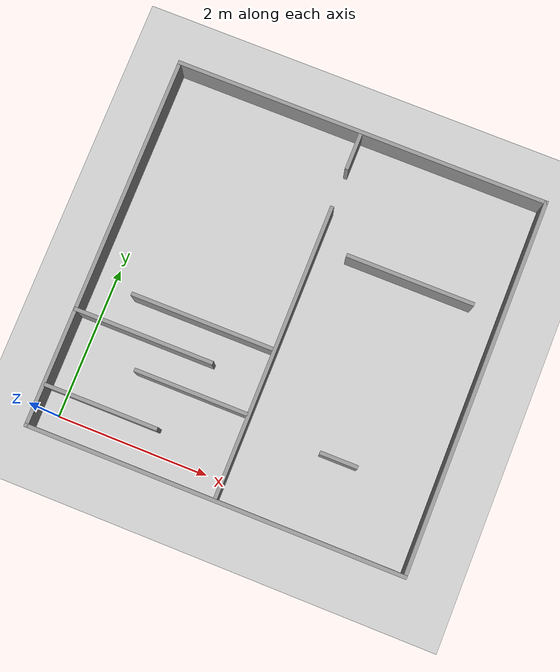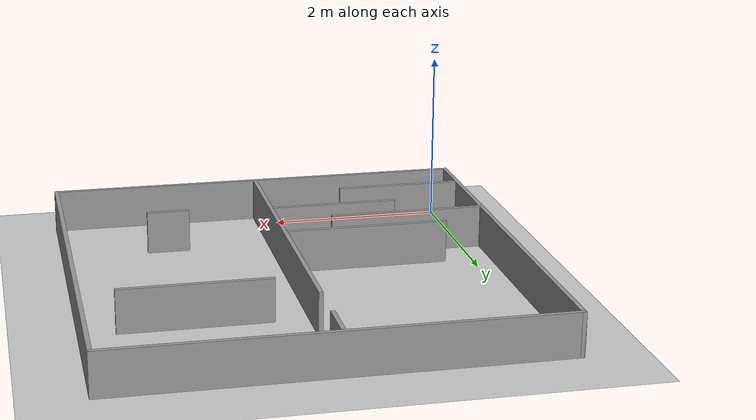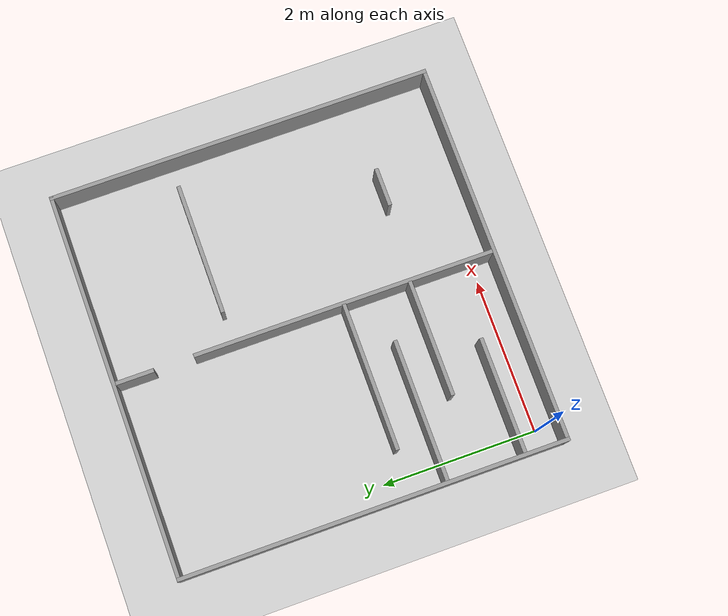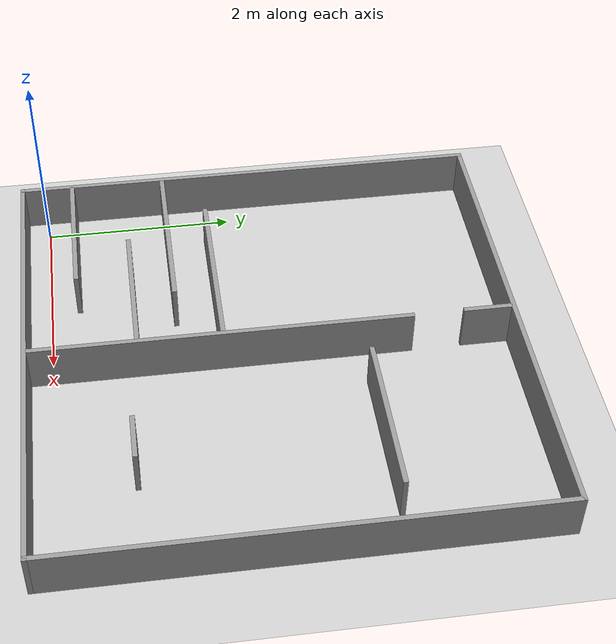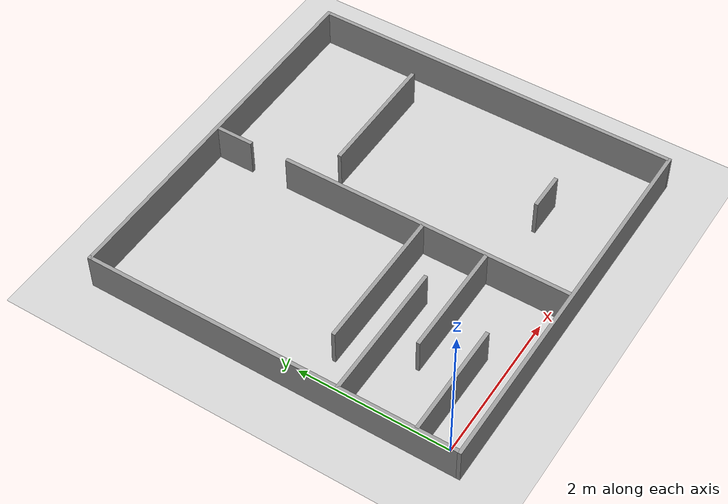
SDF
<sdf version="1.7">
 <world name="default">
  <light name="sun" type="directional">
   <pose>0 0 10 0 -0 0</pose>
   <diffuse>0.8 0.8 0.8 1</diffuse>
   <specular>0.2 0.2 0.2 1</specular>
   <attenuation>
    <range>1000</range>
    <constant>0.9</constant>
    <linear>0.01</linear>
    <quadratic>0.001</quadratic>
   </attenuation>
   <direction>-0.5 0.1 -0.9</direction>
   <spot><inner_angle>0</inner_angle><outer_angle>0</outer_angle><falloff>0</falloff></spot>
  </light>
  <model name="ground_plane">
   <static>1</static>
   <link name="link">
    <collision name="collision">
     <geometry><plane><normal>0 0 1</normal><size>100 100</size></plane></geometry>
     <surface>
      <contact><collide_bitmask>65535</collide_bitmask></contact>
      <friction><ode><mu>100</mu><mu2>50</mu2></ode></friction>
     </surface>
    </collision>
    <visual name="visual">
     <cast_shadows>0</cast_shadows>
     <geometry><plane><normal>0 0 1</normal><size>100 100</size></plane></geometry>
     <material>
      <script><uri>file://media/materials/scripts/gazebo.material</uri><name>Gazebo/Grey</name></script>
     </material>
    </visual>
   </link>
  </model>
  <gravity>0 0 -9.8</gravity>
  <magnetic_field>6e-06 2.3e-05 -4.2e-05</magnetic_field>
  <atmosphere type="adiabatic"/>
  <physics type="ode">
   <max_step_size>0.001</max_step_size>
   <real_time_factor>1</real_time_factor>
   <real_time_update_rate>1000</real_time_update_rate>
  </physics>
  <scene><ambient>0.4 0.4 0.4 1</ambient><background>0.7 0.7 0.7 1</background><shadows>1</shadows></scene>
  <spherical_coordinates>
   <surface_model>EARTH_WGS84</surface_model>
   <latitude_deg>0</latitude_deg>
   <longitude_deg>0</longitude_deg>
   <elevation>0</elevation>
   <heading_deg>0</heading_deg>
  </spherical_coordinates>
  <model name="car">
   <pose>2.23014 2.22643 0 0 -0 0</pose>
   <link name="Wall_0">
    <collision name="Wall_0_Collision">
     <geometry><box><size>5 0.05 0.5</size></box></geometry>
     <pose>0 0 0.25 0 -0 0</pose>
    </collision>
    <visual name="Wall_0_Visual">
     <pose>0 0 0.25 0 -0 0</pose>
     <geometry><box><size>5 0.05 0.5</size></box></geometry>
     <material>
      <script><uri>file://media/materials/scripts/gazebo.material</uri><name>Gazebo/Grey</name></script>
      <ambient>1 1 1 1</ambient>
     </material>
     <meta><layer>0</layer></meta>
    </visual>
    <pose>-2.475 1.3e-05 0 0 -0 -1.57074</pose>
   </link>
   <link name="Wall_11">
    <collision name="Wall_11_Collision">
     <geometry><box><size>3.9 0.05 0.5</size></box></geometry>
     <pose>0 0 0.25 0 -0 0</pose>
    </collision>
    <visual name="Wall_11_Visual">
     <pose>0 0 0.25 0 -0 0</pose>
     <geometry><box><size>3.9 0.05 0.5</size></box></geometry>
     <material>
      <script><uri>file://media/materials/scripts/gazebo.material</uri><name>Gazebo/Grey</name></script>
      <ambient>1 1 1 1</ambient>
     </material>
     <meta><layer>0</layer></meta>
    </visual>
    <pose>0.004563 -0.502438 0 0 -0 -1.5708</pose>
   </link>
   <link name="Wall_13">
    <collision name="Wall_13_Collision">
     <geometry><box><size>1.5 0.05 0.5</size></box></geometry>
     <pose>0 0 0.25 0 -0 0</pose>
    </collision>
    <visual name="Wall_13_Visual">
     <pose>0 0 0.25 0 -0 0</pose>
     <geometry><box><size>1.5 0.05 0.5</size></box></geometry>
     <material>
      <script><uri>file://media/materials/scripts/gazebo.material</uri><name>Gazebo/Grey</name></script>
      <ambient>1 1 1 1</ambient>
     </material>
     <meta><layer>0</layer></meta>
    </visual>
    <pose>-0.760267 -1.35847 0 0 -0 3.14159</pose>
   </link>
   <link name="Wall_15">
    <collision name="Wall_15_Collision">
     <geometry><box><size>1.85 0.05 0.5</size></box></geometry>
     <pose>0 0 0.25 0 -0 0</pose>
    </collision>
    <visual name="Wall_15_Visual">
     <pose>0 0 0.25 0 -0 0</pose>
     <geometry><box><size>1.85 0.05 0.5</size></box></geometry>
     <material>
      <script><uri>file://media/materials/scripts/gazebo.material</uri><name>Gazebo/Grey</name></script>
      <ambient>1 1 1 1</ambient>
     </material>
     <meta><layer>0</layer></meta>
    </visual>
    <pose>-1.56644 -0.930589 0 0 -0 3.14159</pose>
   </link>
   <link name="Wall_17">
    <collision name="Wall_17_Collision">
     <geometry><box><size>1.9 0.05 0.5</size></box></geometry>
     <pose>0 0 0.25 0 -0 0</pose>
    </collision>
    <visual name="Wall_17_Visual">
     <pose>0 0 0.25 0 -0 0</pose>
     <geometry><box><size>1.9 0.05 0.5</size></box></geometry>
     <material>
      <script><uri>file://media/materials/scripts/gazebo.material</uri><name>Gazebo/Grey</name></script>
      <ambient>1 1 1 1</ambient>
     </material>
     <meta><layer>0</layer></meta>
    </visual>
    <pose>-0.957437 -0.49704 0 0 -0 0</pose>
   </link>
   <link name="Wall_19">
    <collision name="Wall_19_Collision">
     <geometry><box><size>0.5 0.05 0.5</size></box></geometry>
     <pose>0 0 0.25 0 -0 0</pose>
    </collision>
    <visual name="Wall_19_Visual">
     <pose>0 0 0.25 0 -0 0</pose>
     <geometry><box><size>0.5 0.05 0.5</size></box></geometry>
     <material>
      <script><uri>file://media/materials/scripts/gazebo.material</uri><name>Gazebo/Grey</name></script>
      <ambient>1 1 1 1</ambient>
     </material>
     <meta><layer>0</layer></meta>
    </visual>
    <pose>-0.002013 2.20714 0 0 -0 1.5708</pose>
   </link>
   <link name="Wall_2">
    <collision name="Wall_2_Collision">
     <geometry><box><size>5 0.05 0.5</size></box></geometry>
     <pose>0 0 0.25 0 -0 0</pose>
    </collision>
    <visual name="Wall_2_Visual">
     <pose>0 0 0.25 0 -0 0</pose>
     <geometry><box><size>5 0.05 0.5</size></box></geometry>
     <material>
      <script><uri>file://media/materials/scripts/gazebo.material</uri><name>Gazebo/Grey</name></script>
      <ambient>1 1 1 1</ambient>
     </material>
     <meta><layer>0</layer></meta>
    </visual>
    <pose>1e-06 2.475 0 0 -0 -5e-06</pose>
   </link>
   <link name="Wall_21">
    <collision name="Wall_21_Collision">
     <geometry><box><size>1.7 0.05 0.5</size></box></geometry>
     <pose>0 0 0.25 0 -0 0</pose>
    </collision>
    <visual name="Wall_21_Visual">
     <pose>0 0 0.25 0 -0 0</pose>
     <geometry><box><size>1.7 0.05 0.5</size></box></geometry>
     <material>
      <script><uri>file://media/materials/scripts/gazebo.material</uri><name>Gazebo/Grey</name></script>
      <ambient>1 1 1 1</ambient>
     </material>
     <meta><layer>0</layer></meta>
    </visual>
    <pose>1.24329 0.936287 0 0 -0 0</pose>
   </link>
   <link name="Wall_23">
    <collision name="Wall_23_Collision">
     <geometry><box><size>0.5 0.05 0.5</size></box></geometry>
     <pose>0 0 0.25 0 -0 0</pose>
    </collision>
    <visual name="Wall_23_Visual">
     <pose>0 0 0.25 0 -0 0</pose>
     <geometry><box><size>0.5 0.05 0.5</size></box></geometry>
     <material>
      <script><uri>file://media/materials/scripts/gazebo.material</uri><name>Gazebo/Grey</name></script>
      <ambient>1 1 1 1</ambient>
     </material>
     <meta><layer>0</layer></meta>
    </visual>
    <pose>1.22829 -1.46383 0 0 -0 0</pose>
   </link>
   <link name="Wall_4">
    <collision name="Wall_4_Collision">
     <geometry><box><size>5 0.05 0.5</size></box></geometry>
     <pose>0 0 0.25 0 -0 0</pose>
    </collision>
    <visual name="Wall_4_Visual">
     <pose>0 0 0.25 0 -0 0</pose>
     <geometry><box><size>5 0.05 0.5</size></box></geometry>
     <material>
      <script><uri>file://media/materials/scripts/gazebo.material</uri><name>Gazebo/Grey</name></script>
      <ambient>1 1 1 1</ambient>
     </material>
     <meta><layer>0</layer></meta>
    </visual>
    <pose>2.47514 -1.4e-05 0 0 -0 -1.5708</pose>
   </link>
   <link name="Wall_6">
    <collision name="Wall_6_Collision">
     <geometry><box><size>5 0.05 0.5</size></box></geometry>
     <pose>0 0 0.25 0 -0 0</pose>
    </collision>
    <visual name="Wall_6_Visual">
     <pose>0 0 0.25 0 -0 0</pose>
     <geometry><box><size>5 0.05 0.5</size></box></geometry>
     <material>
      <script><uri>file://media/materials/scripts/gazebo.material</uri><name>Gazebo/Grey</name></script>
      <ambient>1 1 1 1</ambient>
     </material>
     <meta><layer>0</layer></meta>
    </visual>
    <pose>0.000138 -2.475 0 0 -0 3.14159</pose>
   </link>
   <link name="Wall_8">
    <collision name="Wall_8_Collision">
     <geometry><box><size>1.5 0.05 0.5</size></box></geometry>
     <pose>0 0 0.25 0 -0 0</pose>
    </collision>
    <visual name="Wall_8_Visual">
     <pose>0 0 0.25 0 -0 0</pose>
     <geometry><box><size>1.5 0.05 0.5</size></box></geometry>
     <material>
      <script><uri>file://media/materials/scripts/gazebo.material</uri><name>Gazebo/Grey</name></script>
      <ambient>1 1 1 1</ambient>
     </material>
     <meta><layer>0</layer></meta>
    </visual>
    <pose>-1.71678 -1.93051 0 0 -0 0</pose>
   </link>
   <static>1</static>
  </model>
 </world>
</sdf>
